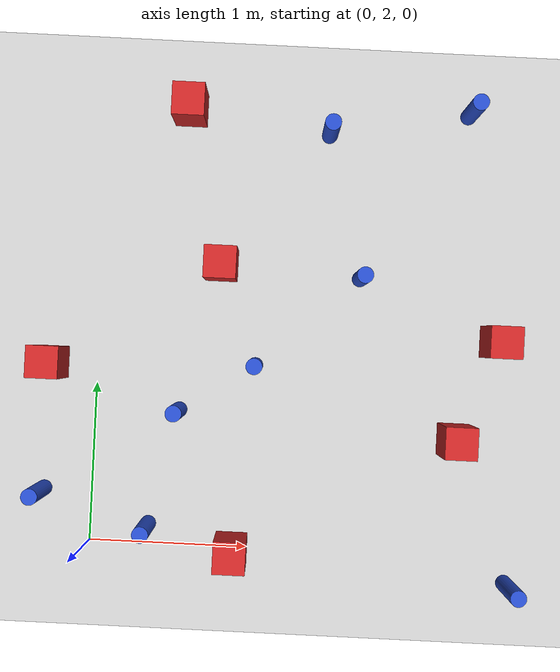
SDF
<sdf version="1.6">
 <world name="default">
  <model name="ground_plane">
   <static>1</static>
   <link name="link">
    <collision name="collision">
     <geometry><plane><normal>0 0 1</normal><size>100 100</size></plane></geometry>
     <surface><friction><ode><mu>100</mu><mu2>50</mu2></ode></friction></surface>
    </collision>
    <visual name="visual">
     <cast_shadows>0</cast_shadows>
     <geometry><plane><normal>0 0 1</normal><size>100 100</size></plane></geometry>
     <material>
      <ambient>1.0 1.0 1.0 1.0</ambient>
      <diffuse>0.8 0.8 0.8 1.0</diffuse>
      <specular>0.01 0.01 0.01 1.000000</specular>
     </material>
    </visual>
   </link>
  </model>
  <model name="pole_obstacle7">
   <static>true</static>
   <pose>0.532441098875 2.85423462872 7.38925637345e-09 -8.471706928e-08 1.2497676512e-08 -1.74513093015e-07</pose>
   <link name="link">
    <pose>0 0 0.3 0 -0 0</pose>
    <inertial>
     <mass>1</mass>
     <inertia><ixx>0.145833</ixx><ixy>0</ixy><ixz>0</ixz><iyy>0.145833</iyy><iyz>0</iyz><izz>0.125</izz></inertia>
    </inertial>
    <collision name="collision">
     <geometry><cylinder><radius>0.05</radius><length>.6</length></cylinder></geometry>
    </collision>
    <visual name="visual">
     <geometry><cylinder><radius>0.05</radius><length>.6</length></cylinder></geometry>
     <material>
      <script><name>Gazebo/Blue</name><uri>file://media/materials/scripts/gazebo.material</uri></script>
     </material>
    </visual>
   </link>
  </model>
  <model name="pole_obstacle9">
   <static>true</static>
   <pose>1.00213003306 3.16016807771 7.38925637345e-09 -8.471706928e-08 1.2497676505e-08 -1.74513093017e-07</pose>
   <link name="link">
    <pose>0 0 0.3 0 -0 0</pose>
    <inertial>
     <mass>1</mass>
     <inertia><ixx>0.145833</ixx><ixy>0</ixy><ixz>0</ixz><iyy>0.145833</iyy><iyz>0</iyz><izz>0.125</izz></inertia>
    </inertial>
    <collision name="collision">
     <geometry><cylinder><radius>0.05</radius><length>.6</length></cylinder></geometry>
    </collision>
    <visual name="visual">
     <geometry><cylinder><radius>0.05</radius><length>.6</length></cylinder></geometry>
     <material>
      <script><name>Gazebo/Blue</name><uri>file://media/materials/scripts/gazebo.material</uri></script>
     </material>
    </visual>
   </link>
  </model>
  <model name="square_post_obstacle13">
   <static>true</static>
   <pose>2.28083767182 2.75085976266 1.91545236811e-07 -7.35059704564e-06 1.12565212e-07 2.39332434364e-05</pose>
   <link name="link">
    <pose>0 0 0.25 0 -0 0</pose>
    <inertial>
     <mass>100</mass>
     <inertia>
      <ixx>0.166667</ixx>
      <ixy>0</ixy>
      <ixz>0</ixz>
      <iyy>0.166667</iyy>
      <iyz>0</iyz>
      <izz>0.166667</izz>
     </inertia>
    </inertial>
    <collision name="collision"><geometry><box><size>.2 .2 .5</size></box></geometry></collision>
    <visual name="visual">
     <geometry><box><size>.2 .2 .5</size></box></geometry>
     <material>
      <script><name>Gazebo/Red</name><uri>file://media/materials/scripts/gazebo.material</uri></script>
     </material>
    </visual>
   </link>
  </model>
  <model name="square_post_obstacle112">
   <static>true</static>
   <pose>2.52562571841 3.37923398145 1.91545236811e-07 -7.35059704564e-06 1.12565212e-07 2.39332434364e-05</pose>
   <link name="link">
    <pose>0 0 0.25 0 -0 0</pose>
    <inertial>
     <mass>100</mass>
     <inertia>
      <ixx>0.166667</ixx>
      <ixy>0</ixy>
      <ixz>0</ixz>
      <iyy>0.166667</iyy>
      <iyz>0</iyz>
      <izz>0.166667</izz>
     </inertia>
    </inertial>
    <collision name="collision"><geometry><box><size>.2 .2 .5</size></box></geometry></collision>
    <visual name="visual">
     <geometry><box><size>.2 .2 .5</size></box></geometry>
     <material>
      <script><name>Gazebo/Red</name><uri>file://media/materials/scripts/gazebo.material</uri></script>
     </material>
    </visual>
   </link>
  </model>
  <model name="pole_obstacle123">
   <static>true</static>
   <pose>0.368179082711 2.11984878527 7.38925637345e-09 -8.471706928e-08 1.24976765084e-08 -1.74513093017e-07</pose>
   <link name="link">
    <pose>0 0 0.3 0 -0 0</pose>
    <inertial>
     <mass>1</mass>
     <inertia><ixx>0.145833</ixx><ixy>0</ixy><ixz>0</ixz><iyy>0.145833</iyy><iyz>0</iyz><izz>0.125</izz></inertia>
    </inertial>
    <collision name="collision">
     <geometry><cylinder><radius>0.05</radius><length>.6</length></cylinder></geometry>
    </collision>
    <visual name="visual">
     <geometry><cylinder><radius>0.05</radius><length>.6</length></cylinder></geometry>
     <material>
      <script><name>Gazebo/Blue</name><uri>file://media/materials/scripts/gazebo.material</uri></script>
     </material>
    </visual>
   </link>
  </model>
  <model name="pole_obstacle150">
   <static>true</static>
   <pose>1.64222078824 3.74040015847 7.38925637345e-09 -8.47170692799e-08 1.24976765053e-08 -1.74513093017e-07</pose>
   <link name="link">
    <pose>0 0 0.3 0 -0 0</pose>
    <inertial>
     <mass>1</mass>
     <inertia><ixx>0.145833</ixx><ixy>0</ixy><ixz>0</ixz><iyy>0.145833</iyy><iyz>0</iyz><izz>0.125</izz></inertia>
    </inertial>
    <collision name="collision">
     <geometry><cylinder><radius>0.05</radius><length>.6</length></cylinder></geometry>
    </collision>
    <visual name="visual">
     <geometry><cylinder><radius>0.05</radius><length>.6</length></cylinder></geometry>
     <material>
      <script><name>Gazebo/Blue</name><uri>file://media/materials/scripts/gazebo.material</uri></script>
     </material>
    </visual>
   </link>
  </model>
  <model name="square_post_obstacle146">
   <static>true</static>
   <pose>0.904602496916 1.9897970902 1.91545236811e-07 -7.35059704564e-06 1.12565212e-07 2.39332434364e-05</pose>
   <link name="link">
    <pose>0 0 0.25 0 -0 0</pose>
    <inertial>
     <mass>100</mass>
     <inertia>
      <ixx>0.166667</ixx>
      <ixy>0</ixy>
      <ixz>0</ixz>
      <iyy>0.166667</iyy>
      <iyz>0</iyz>
      <izz>0.166667</izz>
     </inertia>
    </inertial>
    <collision name="collision"><geometry><box><size>.2 .2 .5</size></box></geometry></collision>
    <visual name="visual">
     <geometry><box><size>.2 .2 .5</size></box></geometry>
     <material>
      <script><name>Gazebo/Red</name><uri>file://media/materials/scripts/gazebo.material</uri></script>
     </material>
    </visual>
   </link>
  </model>
  <model name="pole_obstacle161">
   <static>true</static>
   <pose>2.65067386683 1.84908204365 7.38925637345e-09 -8.471706928e-08 1.24976765152e-08 -1.74513093012e-07</pose>
   <link name="link">
    <pose>0 0 0.3 0 -0 0</pose>
    <inertial>
     <mass>1</mass>
     <inertia><ixx>0.145833</ixx><ixy>0</ixy><ixz>0</ixz><iyy>0.145833</iyy><iyz>0</iyz><izz>0.125</izz></inertia>
    </inertial>
    <collision name="collision">
     <geometry><cylinder><radius>0.05</radius><length>.6</length></cylinder></geometry>
    </collision>
    <visual name="visual">
     <geometry><cylinder><radius>0.05</radius><length>.6</length></cylinder></geometry>
     <material>
      <script><name>Gazebo/Blue</name><uri>file://media/materials/scripts/gazebo.material</uri></script>
     </material>
    </visual>
   </link>
  </model>
  <model name="square_post_obstacle161">
   <static>true</static>
   <pose>0.762491734584 3.78433887787 1.91545236811e-07 -7.35059704564e-06 1.12565212e-07 2.39332434364e-05</pose>
   <link name="link">
    <pose>0 0 0.25 0 -0 0</pose>
    <inertial>
     <mass>100</mass>
     <inertia>
      <ixx>0.166667</ixx>
      <ixy>0</ixy>
      <ixz>0</ixz>
      <iyy>0.166667</iyy>
      <iyz>0</iyz>
      <izz>0.166667</izz>
     </inertia>
    </inertial>
    <collision name="collision"><geometry><box><size>.2 .2 .5</size></box></geometry></collision>
    <visual name="visual">
     <geometry><box><size>.2 .2 .5</size></box></geometry>
     <material>
      <script><name>Gazebo/Red</name><uri>file://media/materials/scripts/gazebo.material</uri></script>
     </material>
    </visual>
   </link>
  </model>
  <model name="pole_obstacle177">
   <static>true</static>
   <pose>1.40622274357 4.64528282391 7.38925637345e-09 -8.47170692799e-08 1.24976765033e-08 -1.74513093018e-07</pose>
   <link name="link">
    <pose>0 0 0.3 0 -0 0</pose>
    <inertial>
     <mass>1</mass>
     <inertia><ixx>0.145833</ixx><ixy>0</ixy><ixz>0</ixz><iyy>0.145833</iyy><iyz>0</iyz><izz>0.125</izz></inertia>
    </inertial>
    <collision name="collision">
     <geometry><cylinder><radius>0.05</radius><length>.6</length></cylinder></geometry>
    </collision>
    <visual name="visual">
     <geometry><cylinder><radius>0.05</radius><length>.6</length></cylinder></geometry>
     <material>
      <script><name>Gazebo/Blue</name><uri>file://media/materials/scripts/gazebo.material</uri></script>
     </material>
    </visual>
   </link>
  </model>
  <model name="square_post_obstacle175">
   <static>true</static>
   <pose>-0.286173058696 3.12305139558 1.91545236811e-07 -7.35059704564e-06 1.12565212e-07 2.39332434364e-05</pose>
   <link name="link">
    <pose>0 0 0.25 0 -0 0</pose>
    <inertial>
     <mass>100</mass>
     <inertia>
      <ixx>0.166667</ixx>
      <ixy>0</ixy>
      <ixz>0</ixz>
      <iyy>0.166667</iyy>
      <iyz>0</iyz>
      <izz>0.166667</izz>
     </inertia>
    </inertial>
    <collision name="collision"><geometry><box><size>.2 .2 .5</size></box></geometry></collision>
    <visual name="visual">
     <geometry><box><size>.2 .2 .5</size></box></geometry>
     <material>
      <script><name>Gazebo/Red</name><uri>file://media/materials/scripts/gazebo.material</uri></script>
     </material>
    </visual>
   </link>
  </model>
  <model name="square_post_obstacle184">
   <static>true</static>
   <pose>0.523607886518 4.76147633011 1.91545236811e-07 -7.35059704564e-06 1.12565212e-07 2.39332434364e-05</pose>
   <link name="link">
    <pose>0 0 0.25 0 -0 0</pose>
    <inertial>
     <mass>100</mass>
     <inertia>
      <ixx>0.166667</ixx>
      <ixy>0</ixy>
      <ixz>0</ixz>
      <iyy>0.166667</iyy>
      <iyz>0</iyz>
      <izz>0.166667</izz>
     </inertia>
    </inertial>
    <collision name="collision"><geometry><box><size>.2 .2 .5</size></box></geometry></collision>
    <visual name="visual">
     <geometry><box><size>.2 .2 .5</size></box></geometry>
     <material>
      <script><name>Gazebo/Red</name><uri>file://media/materials/scripts/gazebo.material</uri></script>
     </material>
    </visual>
   </link>
  </model>
  <model name="pole_obstacle198">
   <static>true</static>
   <pose>-0.304947115081 2.31442221166 7.38925637345e-09 -8.471706928e-08 1.24976765084e-08 -1.74513093017e-07</pose>
   <link name="link">
    <pose>0 0 0.3 0 -0 0</pose>
    <inertial>
     <mass>1</mass>
     <inertia><ixx>0.145833</ixx><ixy>0</ixy><ixz>0</ixz><iyy>0.145833</iyy><iyz>0</iyz><izz>0.125</izz></inertia>
    </inertial>
    <collision name="collision">
     <geometry><cylinder><radius>0.05</radius><length>.6</length></cylinder></geometry>
    </collision>
    <visual name="visual">
     <geometry><cylinder><radius>0.05</radius><length>.6</length></cylinder></geometry>
     <material>
      <script><name>Gazebo/Blue</name><uri>file://media/materials/scripts/gazebo.material</uri></script>
     </material>
    </visual>
   </link>
  </model>
  <model name="pole_obstacle210">
   <static>true</static>
   <pose>2.28331426492 4.80703222655 7.38925637345e-09 -8.47170692798e-08 1.24976765033e-08 -1.74513093019e-07</pose>
   <link name="link">
    <pose>0 0 0.3 0 -0 0</pose>
    <inertial>
     <mass>1</mass>
     <inertia><ixx>0.145833</ixx><ixy>0</ixy><ixz>0</ixz><iyy>0.145833</iyy><iyz>0</iyz><izz>0.125</izz></inertia>
    </inertial>
    <collision name="collision">
     <geometry><cylinder><radius>0.05</radius><length>.6</length></cylinder></geometry>
    </collision>
    <visual name="visual">
     <geometry><cylinder><radius>0.05</radius><length>.6</length></cylinder></geometry>
     <material>
      <script><name>Gazebo/Blue</name><uri>file://media/materials/scripts/gazebo.material</uri></script>
     </material>
    </visual>
   </link>
  </model>
 </world>
</sdf>
